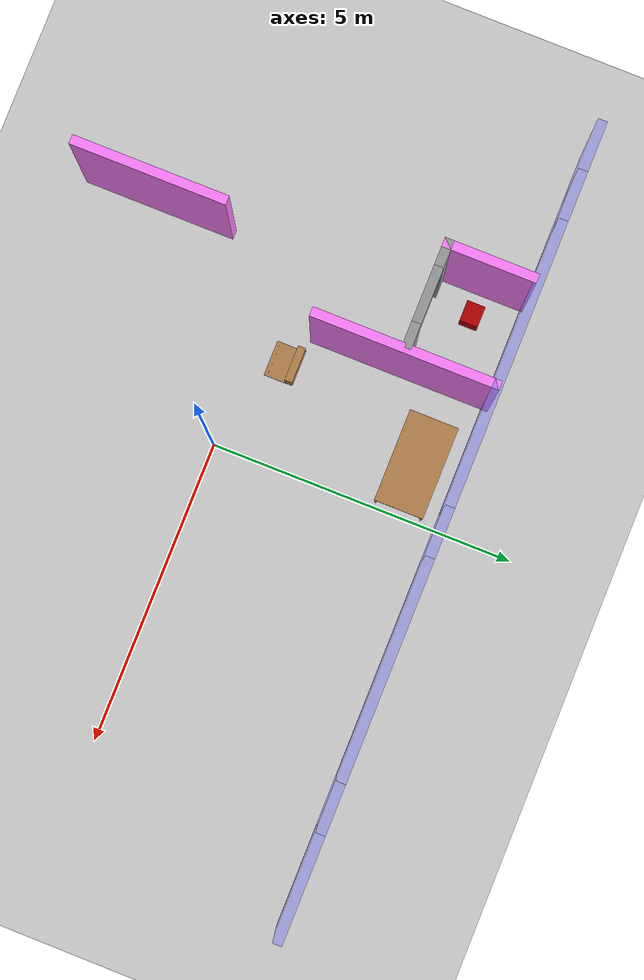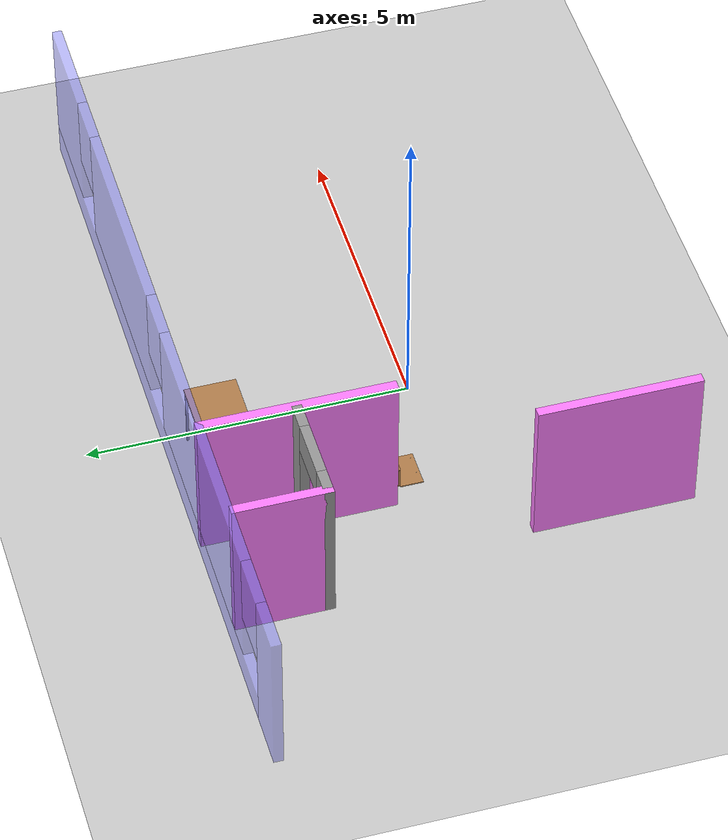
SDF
<sdf version="1.6">
 <world name="default">
  <model name="ground_plane">
   <static>1</static>
   <link name="link">
    <collision name="collision">
     <geometry><plane><normal>0 0 1</normal><size>100 100</size></plane></geometry>
     <surface>
      <contact><collide_bitmask>65535</collide_bitmask></contact>
      <friction><ode><mu>100</mu><mu2>50</mu2></ode></friction>
     </surface>
    </collision>
    <visual name="visual">
     <cast_shadows>0</cast_shadows>
     <geometry><plane><normal>0 0 1</normal><size>100 100</size></plane></geometry>
     <material>
      <script><uri>file://media/materials/scripts/gazebo.material</uri><name>Gazebo/Grey</name></script>
     </material>
    </visual>
   </link>
  </model>
  <model name="table_0">
   <static>1</static>
   <link name="link">
    <collision name="surface">
     <pose>0 0 1 0 -0 0</pose>
     <geometry><box><size>1.5 0.8 0.03</size></box></geometry>
     <surface><friction><ode><mu>0.6</mu><mu2>0.6</mu2></ode></friction></surface>
    </collision>
    <visual name="visual1">
     <pose>0 0 1 0 -0 0</pose>
     <geometry><box><size>1.5 0.8 0.03</size></box></geometry>
     <material>
      <script><uri>file://media/materials/scripts/gazebo.material</uri><name>Gazebo/Wood</name></script>
     </material>
    </visual>
    <collision name="front_left_leg">
     <pose>0.68 0.38 0.5 0 -0 0</pose>
     <geometry><cylinder><radius>0.02</radius><length>1</length></cylinder></geometry>
    </collision>
    <visual name="front_left_leg">
     <pose>0.68 0.38 0.5 0 -0 0</pose>
     <geometry><cylinder><radius>0.02</radius><length>1</length></cylinder></geometry>
     <material>
      <script><uri>file://media/materials/scripts/gazebo.material</uri><name>Gazebo/Grey</name></script>
     </material>
    </visual>
    <collision name="front_right_leg">
     <pose>0.68 -0.38 0.5 0 -0 0</pose>
     <geometry><cylinder><radius>0.02</radius><length>1</length></cylinder></geometry>
    </collision>
    <visual name="front_right_leg">
     <pose>0.68 -0.38 0.5 0 -0 0</pose>
     <geometry><cylinder><radius>0.02</radius><length>1</length></cylinder></geometry>
     <material>
      <script><uri>file://media/materials/scripts/gazebo.material</uri><name>Gazebo/Grey</name></script>
     </material>
    </visual>
    <collision name="back_right_leg">
     <pose>-0.68 -0.38 0.5 0 -0 0</pose>
     <geometry><cylinder><radius>0.02</radius><length>1</length></cylinder></geometry>
    </collision>
    <visual name="back_right_leg">
     <pose>-0.68 -0.38 0.5 0 -0 0</pose>
     <geometry><cylinder><radius>0.02</radius><length>1</length></cylinder></geometry>
     <material>
      <script><uri>file://media/materials/scripts/gazebo.material</uri><name>Gazebo/Grey</name></script>
     </material>
    </visual>
    <collision name="back_left_leg">
     <pose>-0.68 0.38 0.5 0 -0 0</pose>
     <geometry><cylinder><radius>0.02</radius><length>1</length></cylinder></geometry>
    </collision>
    <visual name="back_left_leg">
     <pose>-0.68 0.38 0.5 0 -0 0</pose>
     <geometry><cylinder><radius>0.02</radius><length>1</length></cylinder></geometry>
     <material>
      <script><uri>file://media/materials/scripts/gazebo.material</uri><name>Gazebo/Grey</name></script>
     </material>
    </visual>
   </link>
   <pose>-0.778991 3.08278 0 0 -0 0</pose>
  </model>
  <model name="wooden_case">
   <link name="base">
    <pose>0 0 0.024 0 -0 0</pose>
    <inertial>
     <pose>-0.022184 0 0.171592 0 -0 0</pose>
     <mass>3.96264</mass>
     <inertia>
      <ixx>0.213536</ixx>
      <ixy>0</ixy>
      <ixz>0.000779377</ixz>
      <iyy>0.0708943</iyy>
      <iyz>0</iyz>
      <izz>0.154604</izz>
     </inertia>
    </inertial>
    <collision name="collision_back">
     <pose>-0.053975 0 0.1778 0 -0 0</pose>
     <geometry><box><size>0.01905 0.5461 0.3175</size></box></geometry>
     <surface>
      <contact>
       <poissons_ratio>0.347</poissons_ratio>
       <elastic_modulus>8.8e+09</elastic_modulus>
       <ode><kp>100000</kp><kd>100</kd><max_vel>100</max_vel><min_depth>0.001</min_depth></ode>
      </contact>
      <friction>
       <torsional>
        <coefficient>1</coefficient>
        <use_patch_radius>0</use_patch_radius>
        <surface_radius>0.01</surface_radius>
       </torsional>
      </friction>
     </surface>
    </collision>
    <visual name="visual_back">
     <pose>-0.053975 0 0.1778 0 -0 0</pose>
     <geometry><box><size>0.01905 0.5461 0.3175</size></box></geometry>
     <material>
      <script><uri>file://media/materials/scripts/gazebo.material</uri><name>Gazebo/Wood</name></script>
     </material>
    </visual>
    <collision name="collision_bottom">
     <pose>0 0 0.009525 0 -0 0</pose>
     <geometry><box><size>0.127 0.5842 0.01905</size></box></geometry>
     <surface>
      <contact>
       <poissons_ratio>0.347</poissons_ratio>
       <elastic_modulus>8.8e+09</elastic_modulus>
       <ode><kp>100000</kp><kd>100</kd><max_vel>100</max_vel><min_depth>0.001</min_depth></ode>
      </contact>
      <friction>
       <torsional>
        <coefficient>1</coefficient>
        <use_patch_radius>0</use_patch_radius>
        <surface_radius>0.01</surface_radius>
       </torsional>
      </friction>
     </surface>
    </collision>
    <visual name="visual_bottom">
     <pose>0 0 0.009525 0 -0 0</pose>
     <geometry><box><size>0.127 0.5842 0.01905</size></box></geometry>
     <material>
      <script><uri>file://media/materials/scripts/gazebo.material</uri><name>Gazebo/Wood</name></script>
     </material>
    </visual>
    <collision name="collision_top">
     <pose>0 0 0.346075 0 -0 0</pose>
     <geometry><box><size>0.127 0.5842 0.01905</size></box></geometry>
     <surface>
      <contact>
       <poissons_ratio>0.347</poissons_ratio>
       <elastic_modulus>8.8e+09</elastic_modulus>
       <ode><kp>100000</kp><kd>100</kd><max_vel>100</max_vel><min_depth>0.001</min_depth></ode>
      </contact>
      <friction>
       <torsional>
        <coefficient>1</coefficient>
        <use_patch_radius>0</use_patch_radius>
        <surface_radius>0.01</surface_radius>
       </torsional>
      </friction>
     </surface>
    </collision>
    <visual name="visual_top">
     <pose>0 0 0.346075 0 -0 0</pose>
     <geometry><box><size>0.127 0.5842 0.01905</size></box></geometry>
     <material>
      <script><uri>file://media/materials/scripts/gazebo.material</uri><name>Gazebo/Wood</name></script>
     </material>
    </visual>
    <collision name="collision_left">
     <pose>0 -0.282575 0.1778 0 -0 0</pose>
     <geometry><box><size>0.127 0.01905 0.3175</size></box></geometry>
     <surface>
      <contact>
       <poissons_ratio>0.347</poissons_ratio>
       <elastic_modulus>8.8e+09</elastic_modulus>
       <ode><kp>100000</kp><kd>100</kd><max_vel>100</max_vel><min_depth>0.001</min_depth></ode>
      </contact>
      <friction>
       <torsional>
        <coefficient>1</coefficient>
        <use_patch_radius>0</use_patch_radius>
        <surface_radius>0.01</surface_radius>
       </torsional>
      </friction>
     </surface>
    </collision>
    <visual name="visual_left">
     <pose>0 -0.282575 0.1778 0 -0 0</pose>
     <geometry><box><size>0.127 0.01905 0.3175</size></box></geometry>
     <material>
      <script><uri>file://media/materials/scripts/gazebo.material</uri><name>Gazebo/Wood</name></script>
     </material>
    </visual>
    <collision name="collision_right">
     <pose>0 0.282575 0.1778 0 -0 0</pose>
     <geometry><box><size>0.127 0.01905 0.3175</size></box></geometry>
     <surface>
      <contact>
       <poissons_ratio>0.347</poissons_ratio>
       <elastic_modulus>8.8e+09</elastic_modulus>
       <ode><kp>100000</kp><kd>100</kd><max_vel>100</max_vel><min_depth>0.001</min_depth></ode>
      </contact>
      <friction>
       <torsional>
        <coefficient>1</coefficient>
        <use_patch_radius>0</use_patch_radius>
        <surface_radius>0.01</surface_radius>
       </torsional>
      </friction>
     </surface>
    </collision>
    <visual name="visual_right">
     <pose>0 0.282575 0.1778 0 -0 0</pose>
     <geometry><box><size>0.127 0.01905 0.3175</size></box></geometry>
     <material>
      <script><uri>file://media/materials/scripts/gazebo.material</uri><name>Gazebo/Wood</name></script>
     </material>
    </visual>
    <collision name="collision_block_left">
     <pose>0.0095 -0.2151 -0.012 0 -0 0</pose>
     <geometry><box><size>0.108 0.05 0.024</size></box></geometry>
     <surface>
      <contact>
       <poissons_ratio>0.347</poissons_ratio>
       <elastic_modulus>8.8e+09</elastic_modulus>
       <ode><kp>100000</kp><kd>100</kd><max_vel>100</max_vel><min_depth>0.001</min_depth></ode>
      </contact>
      <friction>
       <torsional>
        <coefficient>1</coefficient>
        <use_patch_radius>0</use_patch_radius>
        <surface_radius>0.01</surface_radius>
       </torsional>
      </friction>
     </surface>
    </collision>
    <visual name="visual_block_left">
     <pose>0.0095 -0.2151 -0.012 0 -0 0</pose>
     <geometry><box><size>0.108 0.05 0.024</size></box></geometry>
     <material>
      <script><uri>file://media/materials/scripts/gazebo.material</uri><name>Gazebo/Wood</name></script>
     </material>
    </visual>
    <collision name="collision_block_right">
     <pose>0.0095 0.2151 -0.012 0 -0 0</pose>
     <geometry><box><size>0.108 0.05 0.024</size></box></geometry>
     <surface>
      <contact>
       <poissons_ratio>0.347</poissons_ratio>
       <elastic_modulus>8.8e+09</elastic_modulus>
       <ode><kp>100000</kp><kd>100</kd><max_vel>100</max_vel><min_depth>0.001</min_depth></ode>
      </contact>
      <friction>
       <torsional>
        <coefficient>1</coefficient>
        <use_patch_radius>0</use_patch_radius>
        <surface_radius>0.01</surface_radius>
       </torsional>
      </friction>
     </surface>
    </collision>
    <visual name="visual_block_right">
     <pose>0.0095 0.2151 -0.012 0 -0 0</pose>
     <geometry><box><size>0.108 0.05 0.024</size></box></geometry>
     <material>
      <script><uri>file://media/materials/scripts/gazebo.material</uri><name>Gazebo/Wood</name></script>
     </material>
    </visual>
   </link>
   <link name="lid">
    <pose>0.243775 0 0.009525 0 -0 0</pose>
    <inertial>
     <mass>1.97874</mass>
     <inertia>
      <ixx>0.0563367</ixx>
      <ixy>0</ixy>
      <ixz>0</ixz>
      <iyy>0.020911</iyy>
      <iyz>0</iyz>
      <izz>0.0771281</izz>
     </inertia>
    </inertial>
    <collision name="collision">
     <geometry><box><size>0.3556 0.5842 0.01905</size></box></geometry>
     <surface>
      <contact>
       <poissons_ratio>0.347</poissons_ratio>
       <elastic_modulus>8.8e+09</elastic_modulus>
       <ode><kp>100000</kp><kd>100</kd><max_vel>100</max_vel><min_depth>0.001</min_depth></ode>
      </contact>
      <friction>
       <torsional>
        <coefficient>1</coefficient>
        <use_patch_radius>0</use_patch_radius>
        <surface_radius>0.01</surface_radius>
       </torsional>
      </friction>
     </surface>
    </collision>
    <visual name="visual">
     <geometry><box><size>0.3556 0.5842 0.01905</size></box></geometry>
     <material>
      <script><uri>file://media/materials/scripts/gazebo.material</uri><name>Gazebo/Wood</name></script>
     </material>
    </visual>
    <visual name="tee_nut_1">
     <pose>0.122 -0.216 0 0 -0 0</pose>
     <geometry><cylinder><radius>0.00635</radius><length>0.0192405</length></cylinder></geometry>
     <material>
      <script><uri>file://media/materials/scripts/gazebo.material</uri><name>Gazebo/Grey</name></script>
     </material>
    </visual>
    <visual name="tee_nut_2">
     <pose>0.122 -0.088 0 0 -0 0</pose>
     <geometry><cylinder><radius>0.00635</radius><length>0.0192405</length></cylinder></geometry>
     <material>
      <script><uri>file://media/materials/scripts/gazebo.material</uri><name>Gazebo/Grey</name></script>
     </material>
    </visual>
    <visual name="tee_nut_3">
     <pose>0.122 0.088 0 0 -0 0</pose>
     <geometry><cylinder><radius>0.00635</radius><length>0.0192405</length></cylinder></geometry>
     <material>
      <script><uri>file://media/materials/scripts/gazebo.material</uri><name>Gazebo/Grey</name></script>
     </material>
    </visual>
    <visual name="tee_nut_4">
     <pose>0.122 0.216 0 0 -0 0</pose>
     <geometry><cylinder><radius>0.00635</radius><length>0.0192405</length></cylinder></geometry>
     <material>
      <script><uri>file://media/materials/scripts/gazebo.material</uri><name>Gazebo/Grey</name></script>
     </material>
    </visual>
   </link>
   <joint name="lid_hinge" type="revolute">
    <pose>-0.1778 0 0.01905 0 -0 0</pose>
    <parent>base</parent>
    <child>lid</child>
    <axis>
     <xyz>0 1 0</xyz>
     <limit><upper>0.523599</upper><lower>-1.5708</lower></limit>
     <use_parent_model_frame>0</use_parent_model_frame>
     <dynamics><spring_reference>0</spring_reference><spring_stiffness>0</spring_stiffness></dynamics>
    </axis>
   </joint>
   <pose>-1.61048 0.741559 -0.001057 0 -0.000429 -1.56956</pose>
  </model>
  <model name="house">
   <link name="Wall_19">
    <pose>-3.30471 -1.60826 0 0 0 -1.5708</pose>
    <inertial>
     <mass>1</mass>
     <inertia><ixx>1</ixx><ixy>0</ixy><ixz>0</ixz><iyy>1</iyy><iyz>0</iyz><izz>1</izz></inertia>
    </inertial>
    <visual name="Wall_19_Visual">
     <pose>0 0 1.25 0 -0 0</pose>
     <geometry><box><size>2.5 0.15 2.5</size></box></geometry>
     <material>
      <script><uri>file://media/materials/scripts/gazebo.material</uri><name>Gazebo/Grey</name></script>
      <ambient>1 0.5 1 1</ambient>
      <shader type="pixel"><normal_map>__default__</normal_map></shader>
      <diffuse>0.7 0.7 0.7 1</diffuse>
      <specular>0.01 0.01 0.01 1</specular>
      <emissive>0 0 0 1</emissive>
     </material>
     <meta><layer>0</layer></meta>
    </visual>
    <collision name="Wall_19_Collision">
     <pose>0 0 1.25 0 -0 0</pose>
     <geometry><box><size>2.5 0.15 2.5</size></box></geometry>
     <surface>
      <friction>
       <ode><mu>1</mu><mu2>1</mu2><fdir1>0 0 0</fdir1><slip1>0</slip1><slip2>0</slip2></ode>
       <torsional>
        <coefficient>1</coefficient>
        <patch_radius>0</patch_radius>
        <surface_radius>0</surface_radius>
        <use_patch_radius>1</use_patch_radius>
        <ode><slip>0</slip></ode>
       </torsional>
      </friction>
      <bounce><restitution_coefficient>0</restitution_coefficient><threshold>1e+06</threshold></bounce>
      <contact>
       <collide_without_contact>0</collide_without_contact>
       <collide_without_contact_bitmask>1</collide_without_contact_bitmask>
       <collide_bitmask>1</collide_bitmask>
       <ode>
        <soft_cfm>0</soft_cfm>
        <soft_erp>0.2</soft_erp>
        <kp>1e+13</kp>
        <kd>1</kd>
        <max_vel>0.01</max_vel>
        <min_depth>0</min_depth>
       </ode>
       <bullet>
        <split_impulse>1</split_impulse>
        <split_impulse_penetration_threshold>-0.01</split_impulse_penetration_threshold>
        <soft_cfm>0</soft_cfm>
        <soft_erp>0.2</soft_erp>
        <kp>1e+13</kp>
        <kd>1</kd>
       </bullet>
      </contact>
     </surface>
    </collision>
   </link>
   <link name="Wall_3">
    <pose>0.026713 4.35585 0 0 -0 0</pose>
    <inertial>
     <mass>1</mass>
     <inertia><ixx>1</ixx><ixy>0</ixy><ixz>0</ixz><iyy>1</iyy><iyz>0</iyz><izz>1</izz></inertia>
    </inertial>
    <visual name="Wall_3_Visual_0">
     <pose>-6.0975 0 1.25 0 -0 0</pose>
     <geometry><box><size>0.805004 0.15 2.5</size></box></geometry>
     <material>
      <script><uri>file://media/materials/scripts/gazebo.material</uri><name>Gazebo/Grey</name></script>
      <ambient>0.5 0.5 1 0.5</ambient>
      <shader type="pixel"><normal_map>__default__</normal_map></shader>
      <diffuse>0.7 0.7 0.7 1</diffuse>
      <specular>0.01 0.01 0.01 1</specular>
      <emissive>0 0 0 1</emissive>
     </material>
     <meta><layer>0</layer></meta>
    </visual>
    <visual name="Wall_3_Visual_1">
     <pose>0.402502 0 0.25 0 -0 0</pose>
     <geometry><box><size>12.195 0.15 0.5</size></box></geometry>
     <material>
      <script><uri>file://media/materials/scripts/gazebo.material</uri><name>Gazebo/Grey</name></script>
      <ambient>0.5 0.5 1 0.5</ambient>
      <shader type="pixel"><normal_map>__default__</normal_map></shader>
      <diffuse>0.7 0.7 0.7 1</diffuse>
      <specular>0.01 0.01 0.01 1</specular>
      <emissive>0 0 0 1</emissive>
     </material>
     <meta><layer>0</layer></meta>
    </visual>
    <visual name="Wall_3_Visual_2">
     <pose>-2.60983 0 1.5 0 -0 0</pose>
     <geometry><box><size>4.57032 0.15 2</size></box></geometry>
     <material>
      <script><uri>file://media/materials/scripts/gazebo.material</uri><name>Gazebo/Grey</name></script>
      <ambient>0.5 0.5 1 0.5</ambient>
      <shader type="pixel"><normal_map>__default__</normal_map></shader>
      <diffuse>0.7 0.7 0.7 1</diffuse>
      <specular>0.01 0.01 0.01 1</specular>
      <emissive>0 0 0 1</emissive>
     </material>
     <meta><layer>0</layer></meta>
    </visual>
    <visual name="Wall_3_Visual_3">
     <pose>2.23754 0 1.5 0 -0 0</pose>
     <geometry><box><size>3.52442 0.15 2</size></box></geometry>
     <material>
      <script><uri>file://media/materials/scripts/gazebo.material</uri><name>Gazebo/Grey</name></script>
      <ambient>0.5 0.5 1 0.5</ambient>
      <shader type="pixel"><normal_map>__default__</normal_map></shader>
      <diffuse>0.7 0.7 0.7 1</diffuse>
      <specular>0.01 0.01 0.01 1</specular>
      <emissive>0 0 0 1</emissive>
     </material>
     <meta><layer>0</layer></meta>
    </visual>
    <visual name="Wall_3_Visual_4">
     <pose>5.64987 0 1.5 0 -0 0</pose>
     <geometry><box><size>1.70026 0.15 2</size></box></geometry>
     <material>
      <script><uri>file://media/materials/scripts/gazebo.material</uri><name>Gazebo/Grey</name></script>
      <ambient>0.5 0.5 1 0.5</ambient>
      <shader type="pixel"><normal_map>__default__</normal_map></shader>
      <diffuse>0.7 0.7 0.7 1</diffuse>
      <specular>0.01 0.01 0.01 1</specular>
      <emissive>0 0 0 1</emissive>
     </material>
     <meta><layer>0</layer></meta>
    </visual>
    <visual name="Wall_3_Visual_5">
     <pose>-5.295 0 1.9 0 -0 0</pose>
     <geometry><box><size>0.8 0.15 1.2</size></box></geometry>
     <material>
      <script><uri>file://media/materials/scripts/gazebo.material</uri><name>Gazebo/Grey</name></script>
      <ambient>0.5 0.5 1 0.5</ambient>
      <shader type="pixel"><normal_map>__default__</normal_map></shader>
      <diffuse>0.7 0.7 0.7 1</diffuse>
      <specular>0.01 0.01 0.01 1</specular>
      <emissive>0 0 0 1</emissive>
     </material>
     <meta><layer>0</layer></meta>
    </visual>
    <visual name="Wall_3_Visual_6">
     <pose>0.075327 0 1.9 0 -0 0</pose>
     <geometry><box><size>0.8 0.15 1.2</size></box></geometry>
     <material>
      <script><uri>file://media/materials/scripts/gazebo.material</uri><name>Gazebo/Grey</name></script>
      <ambient>0.5 0.5 1 0.5</ambient>
      <shader type="pixel"><normal_map>__default__</normal_map></shader>
      <diffuse>0.7 0.7 0.7 1</diffuse>
      <specular>0.01 0.01 0.01 1</specular>
      <emissive>0 0 0 1</emissive>
     </material>
     <meta><layer>0</layer></meta>
    </visual>
    <visual name="Wall_3_Visual_7">
     <pose>4.39975 0 1.9 0 -0 0</pose>
     <geometry><box><size>0.8 0.15 1.2</size></box></geometry>
     <material>
      <script><uri>file://media/materials/scripts/gazebo.material</uri><name>Gazebo/Grey</name></script>
      <ambient>0.5 0.5 1 0.5</ambient>
      <shader type="pixel"><normal_map>__default__</normal_map></shader>
      <diffuse>0.7 0.7 0.7 1</diffuse>
      <specular>0.01 0.01 0.01 1</specular>
      <emissive>0 0 0 1</emissive>
     </material>
     <meta><layer>0</layer></meta>
    </visual>
    <collision name="Wall_3_Collision_0">
     <pose>-6.0975 0 1.25 0 -0 0</pose>
     <geometry><box><size>0.805004 0.15 2.5</size></box></geometry>
     <surface>
      <friction>
       <ode><mu>1</mu><mu2>1</mu2><fdir1>0 0 0</fdir1><slip1>0</slip1><slip2>0</slip2></ode>
       <torsional>
        <coefficient>1</coefficient>
        <patch_radius>0</patch_radius>
        <surface_radius>0</surface_radius>
        <use_patch_radius>1</use_patch_radius>
        <ode><slip>0</slip></ode>
       </torsional>
      </friction>
      <bounce><restitution_coefficient>0</restitution_coefficient><threshold>1e+06</threshold></bounce>
      <contact>
       <collide_without_contact>0</collide_without_contact>
       <collide_without_contact_bitmask>1</collide_without_contact_bitmask>
       <collide_bitmask>1</collide_bitmask>
       <ode>
        <soft_cfm>0</soft_cfm>
        <soft_erp>0.2</soft_erp>
        <kp>1e+13</kp>
        <kd>1</kd>
        <max_vel>0.01</max_vel>
        <min_depth>0</min_depth>
       </ode>
       <bullet>
        <split_impulse>1</split_impulse>
        <split_impulse_penetration_threshold>-0.01</split_impulse_penetration_threshold>
        <soft_cfm>0</soft_cfm>
        <soft_erp>0.2</soft_erp>
        <kp>1e+13</kp>
        <kd>1</kd>
       </bullet>
      </contact>
     </surface>
    </collision>
    <collision name="Wall_3_Collision_1">
     <pose>0.402502 0 0.25 0 -0 0</pose>
     <geometry><box><size>12.195 0.15 0.5</size></box></geometry>
     <surface>
      <friction>
       <ode><mu>1</mu><mu2>1</mu2><fdir1>0 0 0</fdir1><slip1>0</slip1><slip2>0</slip2></ode>
       <torsional>
        <coefficient>1</coefficient>
        <patch_radius>0</patch_radius>
        <surface_radius>0</surface_radius>
        <use_patch_radius>1</use_patch_radius>
        <ode><slip>0</slip></ode>
       </torsional>
      </friction>
      <bounce><restitution_coefficient>0</restitution_coefficient><threshold>1e+06</threshold></bounce>
      <contact>
       <collide_without_contact>0</collide_without_contact>
       <collide_without_contact_bitmask>1</collide_without_contact_bitmask>
       <collide_bitmask>1</collide_bitmask>
       <ode>
        <soft_cfm>0</soft_cfm>
        <soft_erp>0.2</soft_erp>
        <kp>1e+13</kp>
        <kd>1</kd>
        <max_vel>0.01</max_vel>
        <min_depth>0</min_depth>
       </ode>
       <bullet>
        <split_impulse>1</split_impulse>
        <split_impulse_penetration_threshold>-0.01</split_impulse_penetration_threshold>
        <soft_cfm>0</soft_cfm>
        <soft_erp>0.2</soft_erp>
        <kp>1e+13</kp>
        <kd>1</kd>
       </bullet>
      </contact>
     </surface>
    </collision>
    <collision name="Wall_3_Collision_2">
     <pose>-2.60983 0 1.5 0 -0 0</pose>
     <geometry><box><size>4.57032 0.15 2</size></box></geometry>
     <surface>
      <friction>
       <ode><mu>1</mu><mu2>1</mu2><fdir1>0 0 0</fdir1><slip1>0</slip1><slip2>0</slip2></ode>
       <torsional>
        <coefficient>1</coefficient>
        <patch_radius>0</patch_radius>
        <surface_radius>0</surface_radius>
        <use_patch_radius>1</use_patch_radius>
        <ode><slip>0</slip></ode>
       </torsional>
      </friction>
      <bounce><restitution_coefficient>0</restitution_coefficient><threshold>1e+06</threshold></bounce>
      <contact>
       <collide_without_contact>0</collide_without_contact>
       <collide_without_contact_bitmask>1</collide_without_contact_bitmask>
       <collide_bitmask>1</collide_bitmask>
       <ode>
        <soft_cfm>0</soft_cfm>
        <soft_erp>0.2</soft_erp>
        <kp>1e+13</kp>
        <kd>1</kd>
        <max_vel>0.01</max_vel>
        <min_depth>0</min_depth>
       </ode>
       <bullet>
        <split_impulse>1</split_impulse>
        <split_impulse_penetration_threshold>-0.01</split_impulse_penetration_threshold>
        <soft_cfm>0</soft_cfm>
        <soft_erp>0.2</soft_erp>
        <kp>1e+13</kp>
        <kd>1</kd>
       </bullet>
      </contact>
     </surface>
    </collision>
    <collision name="Wall_3_Collision_3">
     <pose>2.23754 0 1.5 0 -0 0</pose>
     <geometry><box><size>3.52442 0.15 2</size></box></geometry>
     <surface>
      <friction>
       <ode><mu>1</mu><mu2>1</mu2><fdir1>0 0 0</fdir1><slip1>0</slip1><slip2>0</slip2></ode>
       <torsional>
        <coefficient>1</coefficient>
        <patch_radius>0</patch_radius>
        <surface_radius>0</surface_radius>
        <use_patch_radius>1</use_patch_radius>
        <ode><slip>0</slip></ode>
       </torsional>
      </friction>
      <bounce><restitution_coefficient>0</restitution_coefficient><threshold>1e+06</threshold></bounce>
      <contact>
       <collide_without_contact>0</collide_without_contact>
       <collide_without_contact_bitmask>1</collide_without_contact_bitmask>
       <collide_bitmask>1</collide_bitmask>
       <ode>
        <soft_cfm>0</soft_cfm>
        <soft_erp>0.2</soft_erp>
        <kp>1e+13</kp>
        <kd>1</kd>
        <max_vel>0.01</max_vel>
        <min_depth>0</min_depth>
       </ode>
       <bullet>
        <split_impulse>1</split_impulse>
        <split_impulse_penetration_threshold>-0.01</split_impulse_penetration_threshold>
        <soft_cfm>0</soft_cfm>
        <soft_erp>0.2</soft_erp>
        <kp>1e+13</kp>
        <kd>1</kd>
       </bullet>
      </contact>
     </surface>
    </collision>
    <collision name="Wall_3_Collision_4">
     <pose>5.64987 0 1.5 0 -0 0</pose>
     <geometry><box><size>1.70026 0.15 2</size></box></geometry>
     <surface>
      <friction>
       <ode><mu>1</mu><mu2>1</mu2><fdir1>0 0 0</fdir1><slip1>0</slip1><slip2>0</slip2></ode>
       <torsional>
        <coefficient>1</coefficient>
        <patch_radius>0</patch_radius>
        <surface_radius>0</surface_radius>
        <use_patch_radius>1</use_patch_radius>
        <ode><slip>0</slip></ode>
       </torsional>
      </friction>
      <bounce><restitution_coefficient>0</restitution_coefficient><threshold>1e+06</threshold></bounce>
      <contact>
       <collide_without_contact>0</collide_without_contact>
       <collide_without_contact_bitmask>1</collide_without_contact_bitmask>
       <collide_bitmask>1</collide_bitmask>
       <ode>
        <soft_cfm>0</soft_cfm>
        <soft_erp>0.2</soft_erp>
        <kp>1e+13</kp>
        <kd>1</kd>
        <max_vel>0.01</max_vel>
        <min_depth>0</min_depth>
       </ode>
       <bullet>
        <split_impulse>1</split_impulse>
        <split_impulse_penetration_threshold>-0.01</split_impulse_penetration_threshold>
        <soft_cfm>0</soft_cfm>
        <soft_erp>0.2</soft_erp>
        <kp>1e+13</kp>
        <kd>1</kd>
       </bullet>
      </contact>
     </surface>
    </collision>
    <collision name="Wall_3_Collision_6">
     <pose>0.075327 0 1.9 0 -0 0</pose>
     <geometry><box><size>0.8 0.15 1.2</size></box></geometry>
     <surface>
      <friction>
       <ode><mu>1</mu><mu2>1</mu2><fdir1>0 0 0</fdir1><slip1>0</slip1><slip2>0</slip2></ode>
       <torsional>
        <coefficient>1</coefficient>
        <patch_radius>0</patch_radius>
        <surface_radius>0</surface_radius>
        <use_patch_radius>1</use_patch_radius>
        <ode><slip>0</slip></ode>
       </torsional>
      </friction>
      <bounce><restitution_coefficient>0</restitution_coefficient><threshold>1e+06</threshold></bounce>
      <contact>
       <collide_without_contact>0</collide_without_contact>
       <collide_without_contact_bitmask>1</collide_without_contact_bitmask>
       <collide_bitmask>1</collide_bitmask>
       <ode>
        <soft_cfm>0</soft_cfm>
        <soft_erp>0.2</soft_erp>
        <kp>1e+13</kp>
        <kd>1</kd>
        <max_vel>0.01</max_vel>
        <min_depth>0</min_depth>
       </ode>
       <bullet>
        <split_impulse>1</split_impulse>
        <split_impulse_penetration_threshold>-0.01</split_impulse_penetration_threshold>
        <soft_cfm>0</soft_cfm>
        <soft_erp>0.2</soft_erp>
        <kp>1e+13</kp>
        <kd>1</kd>
       </bullet>
      </contact>
     </surface>
    </collision>
    <collision name="Wall_3_Collision_5">
     <pose>-5.295 0 1.9 0 -0 0</pose>
     <geometry><box><size>0.8 0.15 1.2</size></box></geometry>
     <surface>
      <friction>
       <ode><mu>1</mu><mu2>1</mu2><fdir1>0 0 0</fdir1><slip1>0</slip1><slip2>0</slip2></ode>
       <torsional>
        <coefficient>1</coefficient>
        <patch_radius>0</patch_radius>
        <surface_radius>0</surface_radius>
        <use_patch_radius>1</use_patch_radius>
        <ode><slip>0</slip></ode>
       </torsional>
      </friction>
      <bounce><restitution_coefficient>0</restitution_coefficient><threshold>1e+06</threshold></bounce>
      <contact>
       <collide_without_contact>0</collide_without_contact>
       <collide_without_contact_bitmask>1</collide_without_contact_bitmask>
       <collide_bitmask>1</collide_bitmask>
       <ode>
        <soft_cfm>0</soft_cfm>
        <soft_erp>0.2</soft_erp>
        <kp>1e+13</kp>
        <kd>1</kd>
        <max_vel>0.01</max_vel>
        <min_depth>0</min_depth>
       </ode>
       <bullet>
        <split_impulse>1</split_impulse>
        <split_impulse_penetration_threshold>-0.01</split_impulse_penetration_threshold>
        <soft_cfm>0</soft_cfm>
        <soft_erp>0.2</soft_erp>
        <kp>1e+13</kp>
        <kd>1</kd>
       </bullet>
      </contact>
     </surface>
    </collision>
    <collision name="Wall_3_Collision_7">
     <pose>4.39975 0 1.9 0 -0 0</pose>
     <geometry><box><size>0.8 0.15 1.2</size></box></geometry>
     <surface>
      <friction>
       <ode><mu>1</mu><mu2>1</mu2><fdir1>0 0 0</fdir1><slip1>0</slip1><slip2>0</slip2></ode>
       <torsional>
        <coefficient>1</coefficient>
        <patch_radius>0</patch_radius>
        <surface_radius>0</surface_radius>
        <use_patch_radius>1</use_patch_radius>
        <ode><slip>0</slip></ode>
       </torsional>
      </friction>
      <bounce><restitution_coefficient>0</restitution_coefficient><threshold>1e+06</threshold></bounce>
      <contact>
       <collide_without_contact>0</collide_without_contact>
       <collide_without_contact_bitmask>1</collide_without_contact_bitmask>
       <collide_bitmask>1</collide_bitmask>
       <ode>
        <soft_cfm>0</soft_cfm>
        <soft_erp>0.2</soft_erp>
        <kp>1e+13</kp>
        <kd>1</kd>
        <max_vel>0.01</max_vel>
        <min_depth>0</min_depth>
       </ode>
       <bullet>
        <split_impulse>1</split_impulse>
        <split_impulse_penetration_threshold>-0.01</split_impulse_penetration_threshold>
        <soft_cfm>0</soft_cfm>
        <soft_erp>0.2</soft_erp>
        <kp>1e+13</kp>
        <kd>1</kd>
       </bullet>
      </contact>
     </surface>
    </collision>
   </link>
   <link name="Wall_31">
    <pose>-2.22775 2.89498 0 0 0 -1.5708</pose>
    <inertial>
     <mass>1</mass>
     <inertia><ixx>1</ixx><ixy>0</ixy><ixz>0</ixz><iyy>1</iyy><iyz>0</iyz><izz>1</izz></inertia>
    </inertial>
    <visual name="Wall_31_Visual">
     <pose>0 0 1.25 0 -0 0</pose>
     <geometry><box><size>3 0.15 2.5</size></box></geometry>
     <material>
      <script><uri>file://media/materials/scripts/gazebo.material</uri><name>Gazebo/Grey</name></script>
      <ambient>1 0.5 1 1</ambient>
      <shader type="pixel"><normal_map>__default__</normal_map></shader>
      <diffuse>0.7 0.7 0.7 1</diffuse>
      <specular>0.01 0.01 0.01 1</specular>
      <emissive>0 0 0 1</emissive>
     </material>
     <meta><layer>0</layer></meta>
    </visual>
    <collision name="Wall_31_Collision">
     <pose>0 0 1.25 0 -0 0</pose>
     <geometry><box><size>3 0.15 2.5</size></box></geometry>
     <surface>
      <friction>
       <ode><mu>1</mu><mu2>1</mu2><fdir1>0 0 0</fdir1><slip1>0</slip1><slip2>0</slip2></ode>
       <torsional>
        <coefficient>1</coefficient>
        <patch_radius>0</patch_radius>
        <surface_radius>0</surface_radius>
        <use_patch_radius>1</use_patch_radius>
        <ode><slip>0</slip></ode>
       </torsional>
      </friction>
      <bounce><restitution_coefficient>0</restitution_coefficient><threshold>1e+06</threshold></bounce>
      <contact>
       <collide_without_contact>0</collide_without_contact>
       <collide_without_contact_bitmask>1</collide_without_contact_bitmask>
       <collide_bitmask>1</collide_bitmask>
       <ode>
        <soft_cfm>0</soft_cfm>
        <soft_erp>0.2</soft_erp>
        <kp>1e+13</kp>
        <kd>1</kd>
        <max_vel>0.01</max_vel>
        <min_depth>0</min_depth>
       </ode>
       <bullet>
        <split_impulse>1</split_impulse>
        <split_impulse_penetration_threshold>-0.01</split_impulse_penetration_threshold>
        <soft_cfm>0</soft_cfm>
        <soft_erp>0.2</soft_erp>
        <kp>1e+13</kp>
        <kd>1</kd>
       </bullet>
      </contact>
     </surface>
    </collision>
   </link>
   <link name="Wall_34">
    <pose>-3.10834 2.90084 0 0 -0 3.14159</pose>
    <inertial>
     <mass>1</mass>
     <inertia><ixx>1</ixx><ixy>0</ixy><ixz>0</ixz><iyy>1</iyy><iyz>0</iyz><izz>1</izz></inertia>
    </inertial>
    <visual name="Wall_34_Visual_0">
     <pose>-0.66928 0 1.25 0 -0 0</pose>
     <geometry><box><size>0.411441 0.15 2.5</size></box></geometry>
     <material>
      <script><uri>file://media/materials/scripts/gazebo.material</uri><name>Gazebo/Grey</name></script>
      <ambient>0.5 0.5 0.5 0.5</ambient>
      <shader type="pixel"><normal_map>__default__</normal_map></shader>
      <diffuse>0.7 0.7 0.7 1</diffuse>
      <specular>0.01 0.01 0.01 1</specular>
      <emissive>0 0 0 1</emissive>
     </material>
     <meta><layer>0</layer></meta>
    </visual>
    <visual name="Wall_34_Visual_1">
     <pose>0.65572 0 1.25 0 -0 0</pose>
     <geometry><box><size>0.438559 0.15 2.5</size></box></geometry>
     <material>
      <script><uri>file://media/materials/scripts/gazebo.material</uri><name>Gazebo/Grey</name></script>
      <ambient>0.5 0.5 0.5 0.5</ambient>
      <shader type="pixel"><normal_map>__default__</normal_map></shader>
      <diffuse>0.7 0.7 0.7 1</diffuse>
      <specular>0.01 0.01 0.01 1</specular>
      <emissive>0 0 0 1</emissive>
     </material>
     <meta><layer>0</layer></meta>
    </visual>
    <visual name="Wall_34_Visual_2">
     <pose>-0.013559 0 2.25 0 -0 0</pose>
     <geometry><box><size>0.9 0.15 0.5</size></box></geometry>
     <material>
      <script><uri>file://media/materials/scripts/gazebo.material</uri><name>Gazebo/Grey</name></script>
      <ambient>0.5 0.5 0.5 0.5</ambient>
      <shader type="pixel"><normal_map>__default__</normal_map></shader>
      <diffuse>0.7 0.7 0.7 1</diffuse>
      <specular>0.01 0.01 0.01 1</specular>
      <emissive>0 0 0 1</emissive>
     </material>
     <meta><layer>0</layer></meta>
    </visual>
    <collision name="Wall_34_Collision_0">
     <pose>-0.66928 0 1.25 0 -0 0</pose>
     <geometry><box><size>0.411441 0.15 2.5</size></box></geometry>
     <surface>
      <friction>
       <ode><mu>1</mu><mu2>1</mu2><fdir1>0 0 0</fdir1><slip1>0</slip1><slip2>0</slip2></ode>
       <torsional>
        <coefficient>1</coefficient>
        <patch_radius>0</patch_radius>
        <surface_radius>0</surface_radius>
        <use_patch_radius>1</use_patch_radius>
        <ode><slip>0</slip></ode>
       </torsional>
      </friction>
      <bounce><restitution_coefficient>0</restitution_coefficient><threshold>1e+06</threshold></bounce>
      <contact>
       <collide_without_contact>0</collide_without_contact>
       <collide_without_contact_bitmask>1</collide_without_contact_bitmask>
       <collide_bitmask>1</collide_bitmask>
       <ode>
        <soft_cfm>0</soft_cfm>
        <soft_erp>0.2</soft_erp>
        <kp>1e+13</kp>
        <kd>1</kd>
        <max_vel>0.01</max_vel>
        <min_depth>0</min_depth>
       </ode>
       <bullet>
        <split_impulse>1</split_impulse>
        <split_impulse_penetration_threshold>-0.01</split_impulse_penetration_threshold>
        <soft_cfm>0</soft_cfm>
        <soft_erp>0.2</soft_erp>
        <kp>1e+13</kp>
        <kd>1</kd>
       </bullet>
      </contact>
     </surface>
    </collision>
    <collision name="Wall_34_Collision_1">
     <pose>0.65572 0 1.25 0 -0 0</pose>
     <geometry><box><size>0.438559 0.15 2.5</size></box></geometry>
     <surface>
      <friction>
       <ode><mu>1</mu><mu2>1</mu2><fdir1>0 0 0</fdir1><slip1>0</slip1><slip2>0</slip2></ode>
       <torsional>
        <coefficient>1</coefficient>
        <patch_radius>0</patch_radius>
        <surface_radius>0</surface_radius>
        <use_patch_radius>1</use_patch_radius>
        <ode><slip>0</slip></ode>
       </torsional>
      </friction>
      <bounce><restitution_coefficient>0</restitution_coefficient><threshold>1e+06</threshold></bounce>
      <contact>
       <collide_without_contact>0</collide_without_contact>
       <collide_without_contact_bitmask>1</collide_without_contact_bitmask>
       <collide_bitmask>1</collide_bitmask>
       <ode>
        <soft_cfm>0</soft_cfm>
        <soft_erp>0.2</soft_erp>
        <kp>1e+13</kp>
        <kd>1</kd>
        <max_vel>0.01</max_vel>
        <min_depth>0</min_depth>
       </ode>
       <bullet>
        <split_impulse>1</split_impulse>
        <split_impulse_penetration_threshold>-0.01</split_impulse_penetration_threshold>
        <soft_cfm>0</soft_cfm>
        <soft_erp>0.2</soft_erp>
        <kp>1e+13</kp>
        <kd>1</kd>
       </bullet>
      </contact>
     </surface>
    </collision>
    <collision name="Wall_34_Collision_2">
     <pose>-0.013559 0 2.25 0 -0 0</pose>
     <geometry><box><size>0.9 0.15 0.5</size></box></geometry>
     <surface>
      <friction>
       <ode><mu>1</mu><mu2>1</mu2><fdir1>0 0 0</fdir1><slip1>0</slip1><slip2>0</slip2></ode>
       <torsional>
        <coefficient>1</coefficient>
        <patch_radius>0</patch_radius>
        <surface_radius>0</surface_radius>
        <use_patch_radius>1</use_patch_radius>
        <ode><slip>0</slip></ode>
       </torsional>
      </friction>
      <bounce><restitution_coefficient>0</restitution_coefficient><threshold>1e+06</threshold></bounce>
      <contact>
       <collide_without_contact>0</collide_without_contact>
       <collide_without_contact_bitmask>1</collide_without_contact_bitmask>
       <collide_bitmask>1</collide_bitmask>
       <ode>
        <soft_cfm>0</soft_cfm>
        <soft_erp>0.2</soft_erp>
        <kp>1e+13</kp>
        <kd>1</kd>
        <max_vel>0.01</max_vel>
        <min_depth>0</min_depth>
       </ode>
       <bullet>
        <split_impulse>1</split_impulse>
        <split_impulse_penetration_threshold>-0.01</split_impulse_penetration_threshold>
        <soft_cfm>0</soft_cfm>
        <soft_erp>0.2</soft_erp>
        <kp>1e+13</kp>
        <kd>1</kd>
       </bullet>
      </contact>
     </surface>
    </collision>
   </link>
   <link name="Wall_35">
    <pose>-3.90834 3.57584 0 0 -0 1.5708</pose>
    <inertial>
     <mass>1</mass>
     <inertia><ixx>1</ixx><ixy>0</ixy><ixz>0</ixz><iyy>1</iyy><iyz>0</iyz><izz>1</izz></inertia>
    </inertial>
    <visual name="Wall_35_Visual">
     <pose>0 0 1.25 0 -0 0</pose>
     <geometry><box><size>1.5 0.15 2.5</size></box></geometry>
     <material>
      <script><uri>file://media/materials/scripts/gazebo.material</uri><name>Gazebo/Grey</name></script>
      <ambient>1 0.5 1 1</ambient>
      <shader type="pixel"><normal_map>__default__</normal_map></shader>
      <diffuse>0.7 0.7 0.7 1</diffuse>
      <specular>0.01 0.01 0.01 1</specular>
      <emissive>0 0 0 1</emissive>
     </material>
     <meta><layer>0</layer></meta>
    </visual>
    <collision name="Wall_35_Collision">
     <pose>0 0 1.25 0 -0 0</pose>
     <geometry><box><size>1.5 0.15 2.5</size></box></geometry>
     <surface>
      <friction>
       <ode><mu>1</mu><mu2>1</mu2><fdir1>0 0 0</fdir1><slip1>0</slip1><slip2>0</slip2></ode>
       <torsional>
        <coefficient>1</coefficient>
        <patch_radius>0</patch_radius>
        <surface_radius>0</surface_radius>
        <use_patch_radius>1</use_patch_radius>
        <ode><slip>0</slip></ode>
       </torsional>
      </friction>
      <bounce><restitution_coefficient>0</restitution_coefficient><threshold>1e+06</threshold></bounce>
      <contact>
       <collide_without_contact>0</collide_without_contact>
       <collide_without_contact_bitmask>1</collide_without_contact_bitmask>
       <collide_bitmask>1</collide_bitmask>
       <ode>
        <soft_cfm>0</soft_cfm>
        <soft_erp>0.2</soft_erp>
        <kp>1e+13</kp>
        <kd>1</kd>
        <max_vel>0.01</max_vel>
        <min_depth>0</min_depth>
       </ode>
       <bullet>
        <split_impulse>1</split_impulse>
        <split_impulse_penetration_threshold>-0.01</split_impulse_penetration_threshold>
        <soft_cfm>0</soft_cfm>
        <soft_erp>0.2</soft_erp>
        <kp>1e+13</kp>
        <kd>1</kd>
       </bullet>
      </contact>
     </surface>
    </collision>
   </link>
   <static>1</static>
   <pose>0.07793 -0.58211 0 0 -0 0</pose>
  </model>
  <model name="unit_box">
   <link name="link">
    <pose>0.120009 1.85234 0 0 -0 0</pose>
    <inertial>
     <mass>0.0365755</mass>
     <inertia>
      <ixx>0.00066633</ixx>
      <ixy>0</ixy>
      <ixz>0</ixz>
      <iyy>0.0007429</iyy>
      <iyz>0</iyz>
      <izz>0.00062712</izz>
     </inertia>
    </inertial>
    <visual name="visual">
     <geometry><box><size>0.339759 0.300524 0.358189</size></box></geometry>
     <material>
      <script><name>Gazebo/Grey</name><uri>file://media/materials/scripts/gazebo.material</uri></script>
      <shader type="pixel"><normal_map>__default__</normal_map></shader>
      <ambient>0.7 0 0 1</ambient>
      <diffuse>0.7 0.7 0.7 1</diffuse>
      <specular>0.01 0.01 0.01 1</specular>
      <emissive>0 0 0 1</emissive>
     </material>
    </visual>
    <collision name="collision">
     <geometry><box><size>0.339759 0.300524 0.358189</size></box></geometry>
     <surface>
      <friction>
       <ode><mu>1</mu><mu2>1</mu2><fdir1>0 0 0</fdir1><slip1>0</slip1><slip2>0</slip2></ode>
       <torsional>
        <coefficient>1</coefficient>
        <patch_radius>0</patch_radius>
        <surface_radius>0</surface_radius>
        <use_patch_radius>1</use_patch_radius>
        <ode><slip>0</slip></ode>
       </torsional>
      </friction>
      <bounce><restitution_coefficient>0</restitution_coefficient><threshold>1e+06</threshold></bounce>
      <contact>
       <collide_without_contact>0</collide_without_contact>
       <collide_without_contact_bitmask>1</collide_without_contact_bitmask>
       <collide_bitmask>1</collide_bitmask>
       <ode>
        <soft_cfm>0</soft_cfm>
        <soft_erp>0.2</soft_erp>
        <kp>1e+13</kp>
        <kd>1</kd>
        <max_vel>0.01</max_vel>
        <min_depth>0</min_depth>
       </ode>
       <bullet>
        <split_impulse>1</split_impulse>
        <split_impulse_penetration_threshold>-0.01</split_impulse_penetration_threshold>
        <soft_cfm>0</soft_cfm>
        <soft_erp>0.2</soft_erp>
        <kp>1e+13</kp>
        <kd>1</kd>
       </bullet>
      </contact>
     </surface>
    </collision>
   </link>
   <static>0</static>
   <pose>-3.44099 1.1786 0.5 0 -0 0</pose>
  </model>
 </world>
</sdf>
